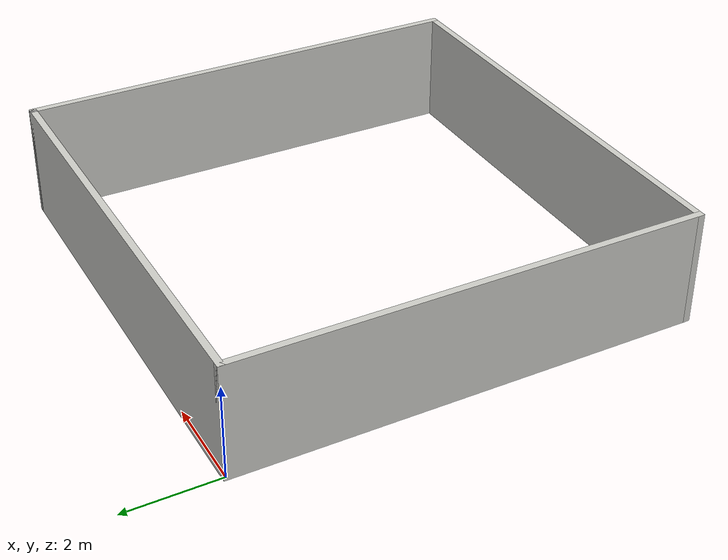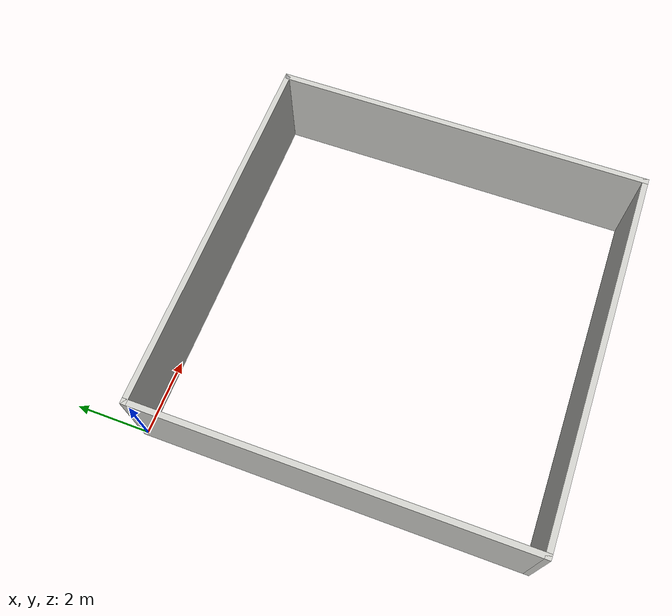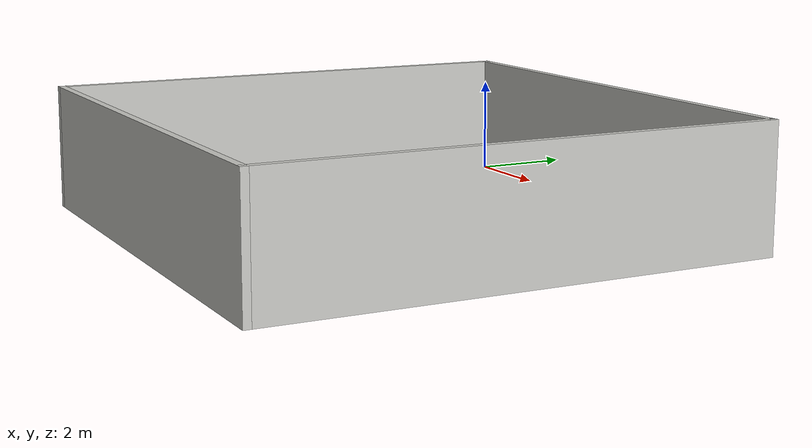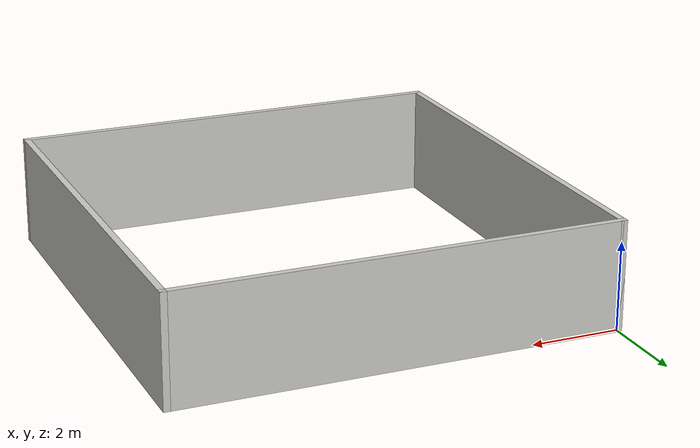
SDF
<?xml version='1.0'?>
<sdf version='1.7'>
  <model name='WS1010'>
    <pose>5 -5 0 0 -0 0</pose>
    <link name='Wall_0'>
      <collision name='Wall_0_Collision'>
        <geometry>
          <box>
            <size>10.15 0.15 2.5</size>
          </box>
        </geometry>
        <pose>0 0 1.25 0 -0 0</pose>
      </collision>
      <visual name='Wall_0_Visual'>
        <pose>0 0 1.25 0 -0 0</pose>
        <geometry>
          <box>
            <size>10.15 0.15 2.5</size>
          </box>
        </geometry>
        <material>
          <script>
            <uri>file://media/materials/scripts/gazebo.material</uri>
            <name>Gazebo/CeilingTiled</name>
          </script>
          <ambient>1 1 1 1</ambient>
        </material>
        <meta>
          <layer>0</layer>
        </meta>
      </visual>
      <pose>-0 5 0 0 -0 0</pose>
    </link>
    <link name='Wall_1'>
      <collision name='Wall_1_Collision'>
        <geometry>
          <box>
            <size>0.15 0.15 2.5</size>
          </box>
        </geometry>
        <pose>0 0 1.25 0 -0 0</pose>
      </collision>
      <visual name='Wall_1_Visual'>
        <pose>0 0 1.25 0 -0 0</pose>
        <geometry>
          <box>
            <size>0.15 0.15 2.5</size>
          </box>
        </geometry>
        <material>
          <script>
            <uri>file://media/materials/scripts/gazebo.material</uri>
            <name>Gazebo/Grey</name>
          </script>
          <ambient>1 1 1 1</ambient>
        </material>
        <meta>
          <layer>0</layer>
        </meta>
      </visual>
      <pose>5 5 0 0 -0 0</pose>
    </link>
    <link name='Wall_3'>
      <collision name='Wall_3_Collision'>
        <geometry>
          <box>
            <size>10.15 0.15 2.5</size>
          </box>
        </geometry>
        <pose>0 0 1.25 0 -0 0</pose>
      </collision>
      <visual name='Wall_3_Visual'>
        <pose>0 0 1.25 0 -0 0</pose>
        <geometry>
          <box>
            <size>10.15 0.15 2.5</size>
          </box>
        </geometry>
        <material>
          <script>
            <uri>file://media/materials/scripts/gazebo.material</uri>
            <name>Gazebo/CeilingTiled</name>
          </script>
          <ambient>1 1 1 1</ambient>
        </material>
        <meta>
          <layer>0</layer>
        </meta>
      </visual>
      <pose>5 0 0 0 -0 -1.5708</pose>
    </link>
    <link name='Wall_4'>
      <collision name='Wall_4_Collision'>
        <geometry>
          <box>
            <size>10.15 0.15 2.5</size>
          </box>
        </geometry>
        <pose>0 0 1.25 0 -0 0</pose>
      </collision>
      <visual name='Wall_4_Visual'>
        <pose>0 0 1.25 0 -0 0</pose>
        <geometry>
          <box>
            <size>10.15 0.15 2.5</size>
          </box>
        </geometry>
        <material>
          <script>
            <uri>file://media/materials/scripts/gazebo.material</uri>
            <name>Gazebo/CeilingTiled</name>
          </script>
          <ambient>1 1 1 1</ambient>
        </material>
        <meta>
          <layer>0</layer>
        </meta>
      </visual>
      <pose>-0 -5 0 0 -0 3.14159</pose>
    </link>
    <link name='Wall_5'>
      <collision name='Wall_5_Collision'>
        <geometry>
          <box>
            <size>10.15 0.15 2.5</size>
          </box>
        </geometry>
        <pose>0 0 1.25 0 -0 0</pose>
      </collision>
      <visual name='Wall_5_Visual'>
        <pose>0 0 1.25 0 -0 0</pose>
        <geometry>
          <box>
            <size>10.15 0.15 2.5</size>
          </box>
        </geometry>
        <material>
          <script>
            <uri>file://media/materials/scripts/gazebo.material</uri>
            <name>Gazebo/CeilingTiled</name>
          </script>
          <ambient>1 1 1 1</ambient>
        </material>
        <meta>
          <layer>0</layer>
        </meta>
      </visual>
      <pose>-5 0 0 0 -0 1.5708</pose>
    </link>
    <static>1</static>
  </model>
</sdf>
